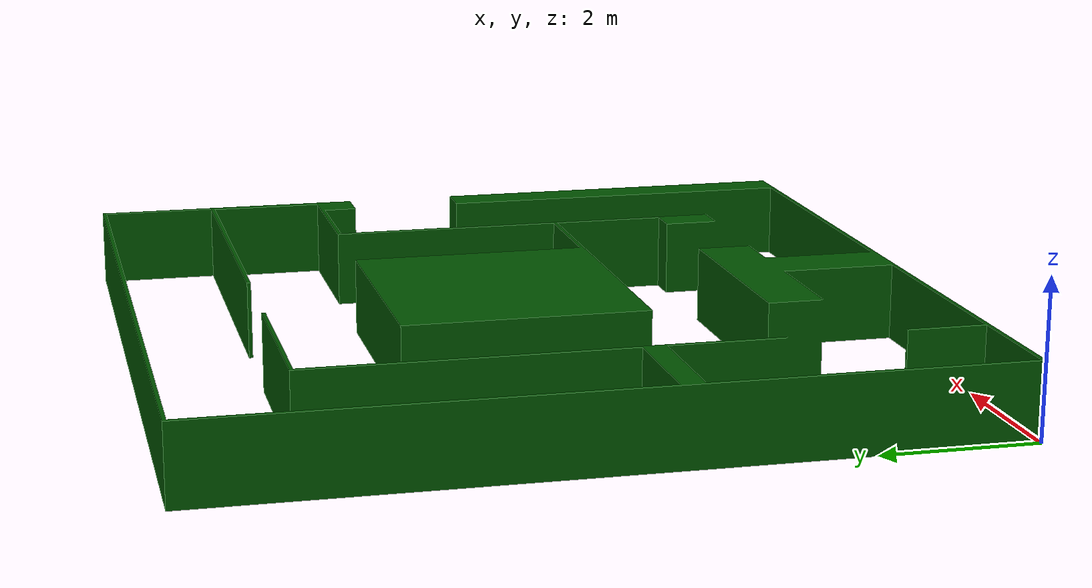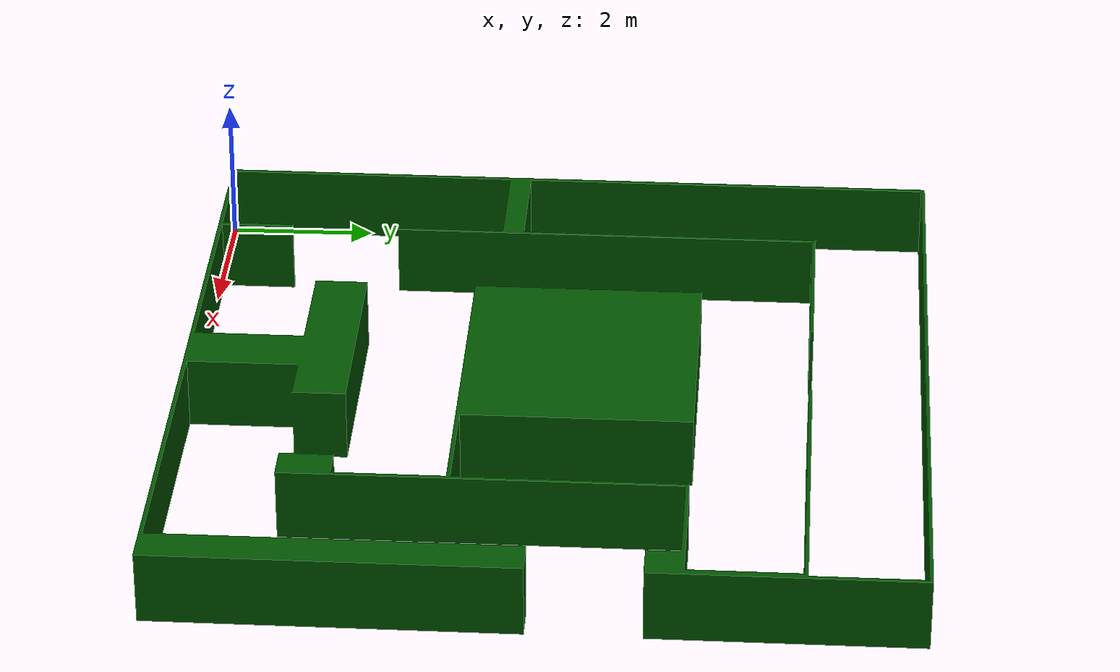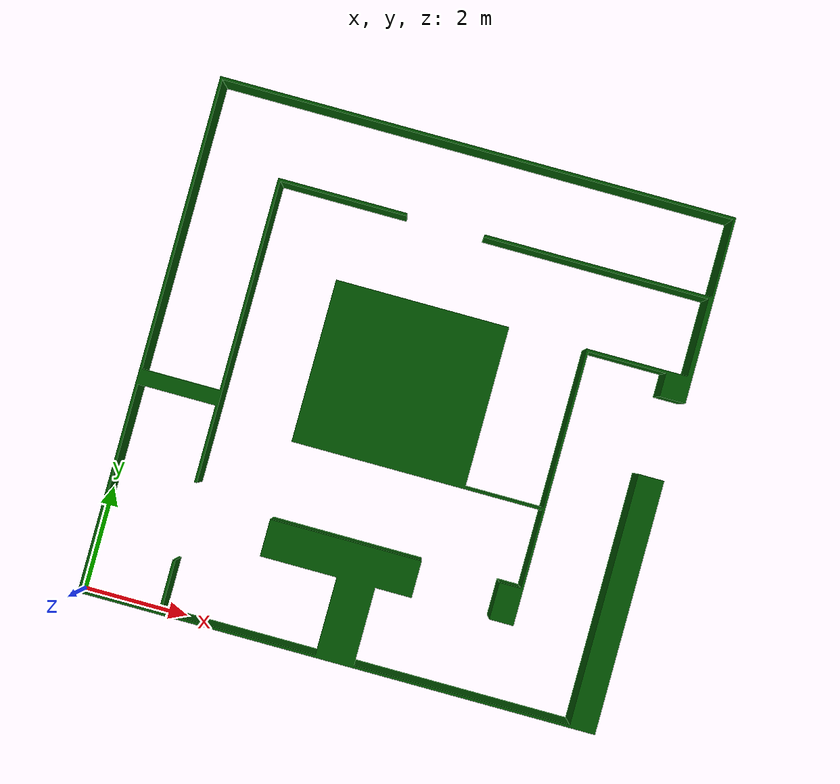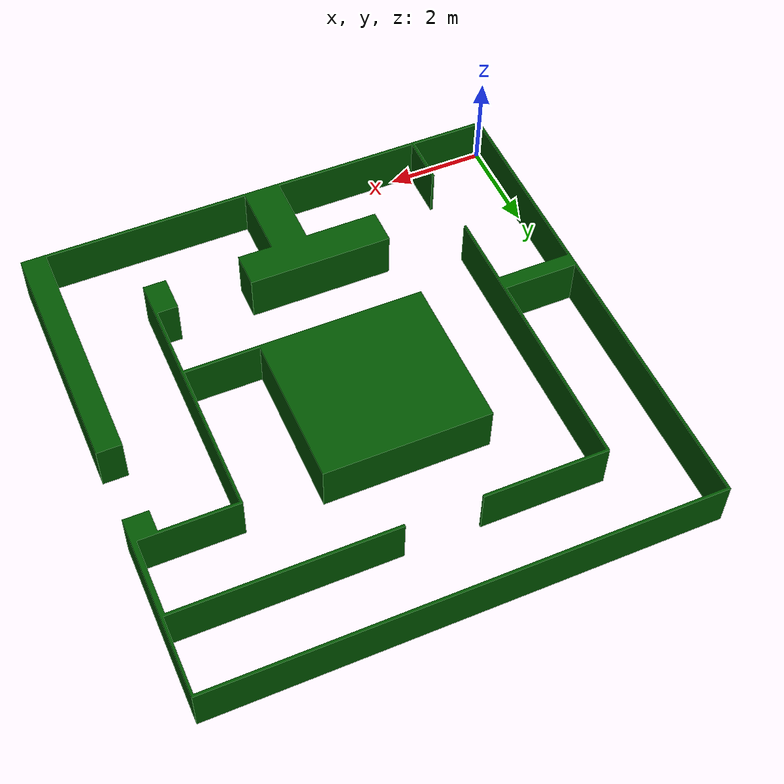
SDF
<?xml version='1.0'?>
<sdf version='1.6'>
  <model name='laberinto'>
    <static>true</static>
    <link name='link'>
        <visual name='visual'>
          <geometry>
            <mesh>
              <uri>model://laberinto/meshes/laberinto.dae</uri>
              <scale>500 500 500</scale>  <!-- Asegúrate de ajustar la escala según sea necesario -->
            </mesh>
          </geometry>
        </visual>
        <collision name='collision'>
          <geometry>
            <mesh>
              <uri>model://laberinto/meshes/laberinto.dae</uri>
              <scale>500 500 500</scale>  <!-- Asegúrate de ajustar la escala según sea necesario -->
            </mesh>
          </geometry>
        </collision>
      </link>
    </model>
</sdf>
